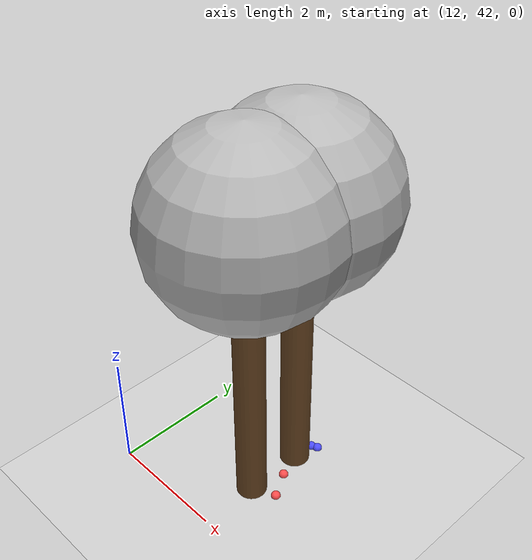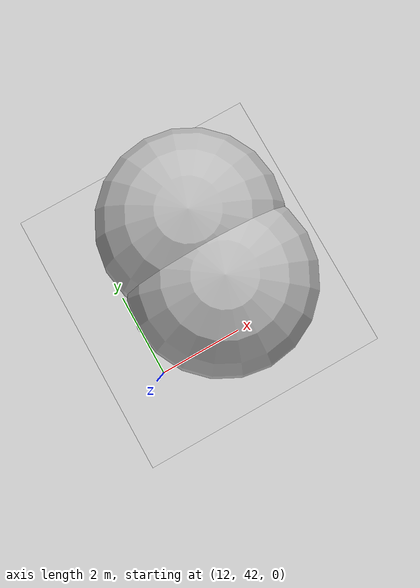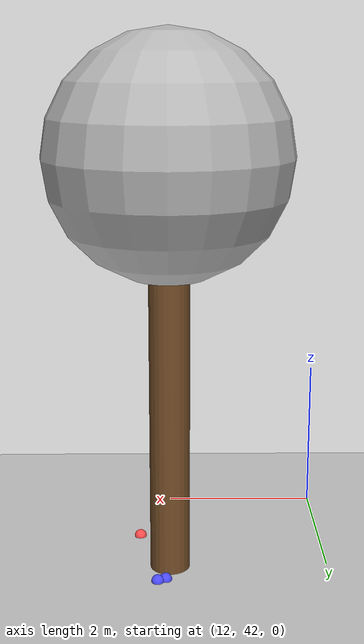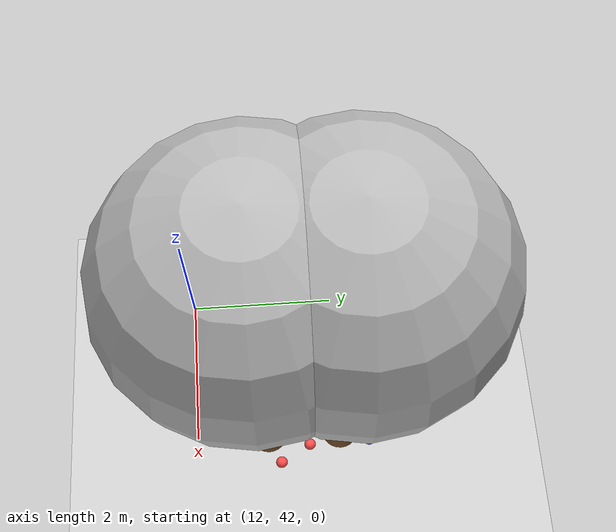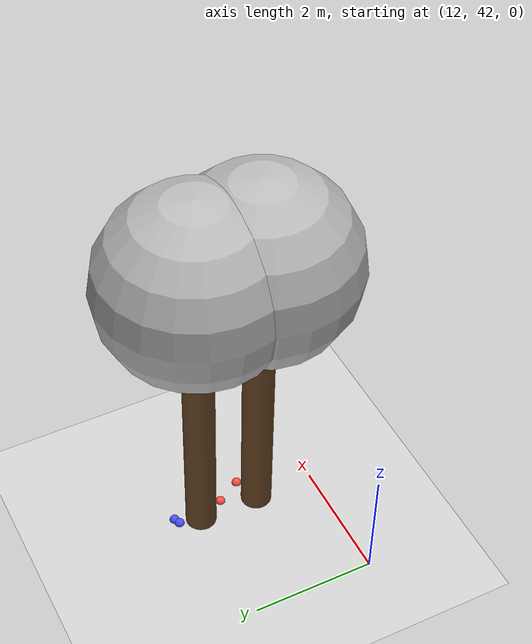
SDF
<sdf version="1.7">
 <world name="default">
  <model name="ground_plane">
   <static>1</static>
   <link name="link">
    <collision name="collision">
     <geometry><plane><normal>0 0 1</normal><size>100 100</size></plane></geometry>
     <surface>
      <contact><collide_bitmask>65535</collide_bitmask></contact>
      <friction><ode><mu>100</mu><mu2>50</mu2></ode></friction>
     </surface>
    </collision>
    <visual name="visual">
     <cast_shadows>0</cast_shadows>
     <geometry><plane><normal>0 0 1</normal><size>100 100</size></plane></geometry>
     <material>
      <script><uri>file://media/materials/scripts/gazebo.material</uri><name>Gazebo/Grey</name></script>
     </material>
    </visual>
   </link>
  </model>
  <model name="tree_simple_8">
   <static>1</static>
   <link name="link">
    <pose>0 0 0.1 0 -0 0</pose>
    <inertial>
     <mass>666</mass>
     <inertia>
      <ixx>0.0861167</ixx>
      <ixy>0</ixy>
      <ixz>0</ixz>
      <iyy>0.0861167</iyy>
      <iyz>0</iyz>
      <izz>0.0861167</izz>
     </inertia>
    </inertial>
    <collision name="collision_trunk">
     <pose>0 0 2 0 -0 0</pose>
     <geometry><cylinder><radius>0.25</radius><length>4</length></cylinder></geometry>
     <surface>
      <contact>
       <poissons_ratio>0.347</poissons_ratio>
       <elastic_modulus>8.8e+09</elastic_modulus>
       <ode><kp>100000</kp><kd>100</kd><max_vel>100</max_vel><min_depth>0.001</min_depth></ode>
      </contact>
      <friction>
       <torsional>
        <coefficient>1</coefficient>
        <use_patch_radius>0</use_patch_radius>
        <surface_radius>0.01</surface_radius>
       </torsional>
      </friction>
     </surface>
    </collision>
    <collision name="collision_treetop">
     <pose>0 0 5.2 0 -0 0</pose>
     <geometry><sphere><radius>1.5</radius></sphere></geometry>
     <surface>
      <contact>
       <poissons_ratio>0.347</poissons_ratio>
       <elastic_modulus>8.8e+09</elastic_modulus>
       <ode><kp>100000</kp><kd>100</kd><max_vel>100</max_vel><min_depth>0.001</min_depth></ode>
      </contact>
      <friction>
       <torsional>
        <coefficient>1</coefficient>
        <use_patch_radius>0</use_patch_radius>
        <surface_radius>0.01</surface_radius>
       </torsional>
      </friction>
     </surface>
    </collision>
    <visual name="trunk">
     <pose>0 0 2 0 -0 0</pose>
     <geometry><cylinder><radius>0.25</radius><length>4</length></cylinder></geometry>
     <material>
      <script>
       <uri>model://tree_simple/scripts</uri>
       <uri>model://tree_simple/materials/textures</uri>
       <name>TreeSimple/Trunk</name>
      </script>
     </material>
    </visual>
    <visual name="treetop">
     <pose>0 0 5.2 0 -0 0</pose>
     <geometry><sphere><radius>1.5</radius></sphere></geometry>
     <material>
      <script>
       <uri>model://tree_simple/scripts</uri>
       <uri>model://tree_simple/materials/textures</uri>
       <name>TreeSimple/Treetop</name>
      </script>
     </material>
    </visual>
   </link>
   <pose>14 44 -0.1 0 -0 0</pose>
  </model>
  <model name="tree_simple_10">
   <static>1</static>
   <link name="link">
    <pose>0 0 0.1 0 -0 0</pose>
    <inertial>
     <mass>666</mass>
     <inertia>
      <ixx>0.0861167</ixx>
      <ixy>0</ixy>
      <ixz>0</ixz>
      <iyy>0.0861167</iyy>
      <iyz>0</iyz>
      <izz>0.0861167</izz>
     </inertia>
    </inertial>
    <collision name="collision_trunk">
     <pose>0 0 2 0 -0 0</pose>
     <geometry><cylinder><radius>0.25</radius><length>4</length></cylinder></geometry>
     <surface>
      <contact>
       <poissons_ratio>0.347</poissons_ratio>
       <elastic_modulus>8.8e+09</elastic_modulus>
       <ode><kp>100000</kp><kd>100</kd><max_vel>100</max_vel><min_depth>0.001</min_depth></ode>
      </contact>
      <friction>
       <torsional>
        <coefficient>1</coefficient>
        <use_patch_radius>0</use_patch_radius>
        <surface_radius>0.01</surface_radius>
       </torsional>
      </friction>
     </surface>
    </collision>
    <collision name="collision_treetop">
     <pose>0 0 5.2 0 -0 0</pose>
     <geometry><sphere><radius>1.5</radius></sphere></geometry>
     <surface>
      <contact>
       <poissons_ratio>0.347</poissons_ratio>
       <elastic_modulus>8.8e+09</elastic_modulus>
       <ode><kp>100000</kp><kd>100</kd><max_vel>100</max_vel><min_depth>0.001</min_depth></ode>
      </contact>
      <friction>
       <torsional>
        <coefficient>1</coefficient>
        <use_patch_radius>0</use_patch_radius>
        <surface_radius>0.01</surface_radius>
       </torsional>
      </friction>
     </surface>
    </collision>
    <visual name="trunk">
     <pose>0 0 2 0 -0 0</pose>
     <geometry><cylinder><radius>0.25</radius><length>4</length></cylinder></geometry>
     <material>
      <script>
       <uri>model://tree_simple/scripts</uri>
       <uri>model://tree_simple/materials/textures</uri>
       <name>TreeSimple/Trunk</name>
      </script>
     </material>
    </visual>
    <visual name="treetop">
     <pose>0 0 5.2 0 -0 0</pose>
     <geometry><sphere><radius>1.5</radius></sphere></geometry>
     <material>
      <script>
       <uri>model://tree_simple/scripts</uri>
       <uri>model://tree_simple/materials/textures</uri>
       <name>TreeSimple/Treetop</name>
      </script>
     </material>
    </visual>
   </link>
   <pose>14 43 -0.1 0 -0 0</pose>
  </model>
  <model name="seed_blue_24">
   <link name="link">
    <inertial>
     <mass>1</mass>
     <inertia><ixx>0.1</ixx><ixy>0</ixy><ixz>0</ixz><iyy>0.1</iyy><iyz>0</iyz><izz>0.1</izz></inertia>
    </inertial>
    <visual name="visual">
     <geometry><sphere><radius>0.08</radius></sphere></geometry>
     <material>
      <script><name>Gazebo/Grey</name><uri>file://media/materials/scripts/gazebo.material</uri></script>
      <shader type="pixel"><normal_map>__default__</normal_map></shader>
      <ambient>0.3 0.3 1 1</ambient>
      <diffuse>0.7 0.7 0.7 1</diffuse>
      <specular>0.01 0.01 0.01 1</specular>
      <emissive>0 0 0 1</emissive>
     </material>
    </visual>
    <collision name="collision">
     <geometry><sphere><radius>0.0005</radius></sphere></geometry>
     <surface>
      <friction>
       <ode><mu>1</mu><mu2>1</mu2><fdir1>0 0 0</fdir1><slip1>0</slip1><slip2>0</slip2></ode>
       <torsional>
        <coefficient>1</coefficient>
        <patch_radius>0</patch_radius>
        <surface_radius>0</surface_radius>
        <use_patch_radius>1</use_patch_radius>
        <ode><slip>0</slip></ode>
       </torsional>
      </friction>
      <bounce><restitution_coefficient>0</restitution_coefficient><threshold>1e+06</threshold></bounce>
      <contact>
       <collide_without_contact>0</collide_without_contact>
       <collide_without_contact_bitmask>1</collide_without_contact_bitmask>
       <collide_bitmask>1</collide_bitmask>
       <ode>
        <soft_cfm>0</soft_cfm>
        <soft_erp>0.2</soft_erp>
        <kp>1e+13</kp>
        <kd>1</kd>
        <max_vel>0.01</max_vel>
        <min_depth>0</min_depth>
       </ode>
       <bullet>
        <split_impulse>1</split_impulse>
        <split_impulse_penetration_threshold>-0.01</split_impulse_penetration_threshold>
        <soft_cfm>0</soft_cfm>
        <soft_erp>0.2</soft_erp>
        <kp>1e+13</kp>
        <kd>1</kd>
       </bullet>
      </contact>
     </surface>
    </collision>
   </link>
   <static>0</static>
   <pose>14.1539 44.4058 0.0005 0 -0 0</pose>
  </model>
  <model name="seed_blue_29">
   <link name="link">
    <inertial>
     <mass>1</mass>
     <inertia><ixx>0.1</ixx><ixy>0</ixy><ixz>0</ixz><iyy>0.1</iyy><iyz>0</iyz><izz>0.1</izz></inertia>
    </inertial>
    <visual name="visual">
     <geometry><sphere><radius>0.08</radius></sphere></geometry>
     <material>
      <script><name>Gazebo/Grey</name><uri>file://media/materials/scripts/gazebo.material</uri></script>
      <shader type="pixel"><normal_map>__default__</normal_map></shader>
      <ambient>0.3 0.3 1 1</ambient>
      <diffuse>0.7 0.7 0.7 1</diffuse>
      <specular>0.01 0.01 0.01 1</specular>
      <emissive>0 0 0 1</emissive>
     </material>
    </visual>
    <collision name="collision">
     <geometry><sphere><radius>0.0005</radius></sphere></geometry>
     <surface>
      <friction>
       <ode><mu>1</mu><mu2>1</mu2><fdir1>0 0 0</fdir1><slip1>0</slip1><slip2>0</slip2></ode>
       <torsional>
        <coefficient>1</coefficient>
        <patch_radius>0</patch_radius>
        <surface_radius>0</surface_radius>
        <use_patch_radius>1</use_patch_radius>
        <ode><slip>0</slip></ode>
       </torsional>
      </friction>
      <bounce><restitution_coefficient>0</restitution_coefficient><threshold>1e+06</threshold></bounce>
      <contact>
       <collide_without_contact>0</collide_without_contact>
       <collide_without_contact_bitmask>1</collide_without_contact_bitmask>
       <collide_bitmask>1</collide_bitmask>
       <ode>
        <soft_cfm>0</soft_cfm>
        <soft_erp>0.2</soft_erp>
        <kp>1e+13</kp>
        <kd>1</kd>
        <max_vel>0.01</max_vel>
        <min_depth>0</min_depth>
       </ode>
       <bullet>
        <split_impulse>1</split_impulse>
        <split_impulse_penetration_threshold>-0.01</split_impulse_penetration_threshold>
        <soft_cfm>0</soft_cfm>
        <soft_erp>0.2</soft_erp>
        <kp>1e+13</kp>
        <kd>1</kd>
       </bullet>
      </contact>
     </surface>
    </collision>
   </link>
   <static>0</static>
   <pose>14.0549 44.3609 0.0005 0 -0 0</pose>
  </model>
  <model name="seed_red_37">
   <link name="link">
    <inertial>
     <mass>1</mass>
     <inertia><ixx>0.1</ixx><ixy>0</ixy><ixz>0</ixz><iyy>0.1</iyy><iyz>0</iyz><izz>0.1</izz></inertia>
    </inertial>
    <visual name="visual">
     <geometry><sphere><radius>0.08</radius></sphere></geometry>
     <material>
      <script><name>Gazebo/Grey</name><uri>file://media/materials/scripts/gazebo.material</uri></script>
      <shader type="pixel"><normal_map>__default__</normal_map></shader>
      <ambient>1 0.3 0.3 1</ambient>
      <diffuse>0.7 0.7 0.7 1</diffuse>
      <specular>0.01 0.01 0.01 1</specular>
      <emissive>0 0 0 1</emissive>
     </material>
    </visual>
    <collision name="collision">
     <geometry><sphere><radius>0.0005</radius></sphere></geometry>
     <surface>
      <friction>
       <ode><mu>1</mu><mu2>1</mu2><fdir1>0 0 0</fdir1><slip1>0</slip1><slip2>0</slip2></ode>
       <torsional>
        <coefficient>1</coefficient>
        <patch_radius>0</patch_radius>
        <surface_radius>0</surface_radius>
        <use_patch_radius>1</use_patch_radius>
        <ode><slip>0</slip></ode>
       </torsional>
      </friction>
      <bounce><restitution_coefficient>0</restitution_coefficient><threshold>1e+06</threshold></bounce>
      <contact>
       <collide_without_contact>0</collide_without_contact>
       <collide_without_contact_bitmask>1</collide_without_contact_bitmask>
       <collide_bitmask>1</collide_bitmask>
       <ode>
        <soft_cfm>0</soft_cfm>
        <soft_erp>0.2</soft_erp>
        <kp>1e+13</kp>
        <kd>1</kd>
        <max_vel>0.01</max_vel>
        <min_depth>0</min_depth>
       </ode>
       <bullet>
        <split_impulse>1</split_impulse>
        <split_impulse_penetration_threshold>-0.01</split_impulse_penetration_threshold>
        <soft_cfm>0</soft_cfm>
        <soft_erp>0.2</soft_erp>
        <kp>1e+13</kp>
        <kd>1</kd>
       </bullet>
      </contact>
     </surface>
    </collision>
   </link>
   <static>0</static>
   <pose>14.1733 43.5673 0.0005 0 -0 0</pose>
  </model>
  <model name="seed_red_43">
   <link name="link">
    <inertial>
     <mass>1</mass>
     <inertia><ixx>0.1</ixx><ixy>0</ixy><ixz>0</ixz><iyy>0.1</iyy><iyz>0</iyz><izz>0.1</izz></inertia>
    </inertial>
    <visual name="visual">
     <geometry><sphere><radius>0.08</radius></sphere></geometry>
     <material>
      <script><name>Gazebo/Grey</name><uri>file://media/materials/scripts/gazebo.material</uri></script>
      <shader type="pixel"><normal_map>__default__</normal_map></shader>
      <ambient>1 0.3 0.3 1</ambient>
      <diffuse>0.7 0.7 0.7 1</diffuse>
      <specular>0.01 0.01 0.01 1</specular>
      <emissive>0 0 0 1</emissive>
     </material>
    </visual>
    <collision name="collision">
     <geometry><sphere><radius>0.0005</radius></sphere></geometry>
     <surface>
      <friction>
       <ode><mu>1</mu><mu2>1</mu2><fdir1>0 0 0</fdir1><slip1>0</slip1><slip2>0</slip2></ode>
       <torsional>
        <coefficient>1</coefficient>
        <patch_radius>0</patch_radius>
        <surface_radius>0</surface_radius>
        <use_patch_radius>1</use_patch_radius>
        <ode><slip>0</slip></ode>
       </torsional>
      </friction>
      <bounce><restitution_coefficient>0</restitution_coefficient><threshold>1e+06</threshold></bounce>
      <contact>
       <collide_without_contact>0</collide_without_contact>
       <collide_without_contact_bitmask>1</collide_without_contact_bitmask>
       <collide_bitmask>1</collide_bitmask>
       <ode>
        <soft_cfm>0</soft_cfm>
        <soft_erp>0.2</soft_erp>
        <kp>1e+13</kp>
        <kd>1</kd>
        <max_vel>0.01</max_vel>
        <min_depth>0</min_depth>
       </ode>
       <bullet>
        <split_impulse>1</split_impulse>
        <split_impulse_penetration_threshold>-0.01</split_impulse_penetration_threshold>
        <soft_cfm>0</soft_cfm>
        <soft_erp>0.2</soft_erp>
        <kp>1e+13</kp>
        <kd>1</kd>
       </bullet>
      </contact>
     </surface>
    </collision>
   </link>
   <static>0</static>
   <pose>14.4048 43.1586 0.0005 0 -0 0</pose>
  </model>
 </world>
</sdf>
